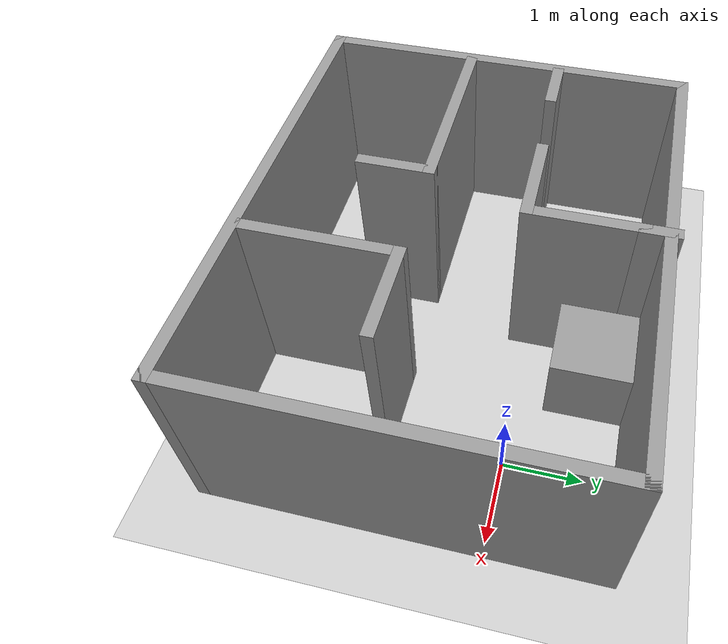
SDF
<sdf version="1.7">
 <world name="default">
  <light name="sun" type="directional">
   <pose>0 0 10 0 -0 0</pose>
   <diffuse>0.8 0.8 0.8 1</diffuse>
   <specular>0.2 0.2 0.2 1</specular>
   <attenuation>
    <range>1000</range>
    <constant>0.9</constant>
    <linear>0.01</linear>
    <quadratic>0.001</quadratic>
   </attenuation>
   <direction>-0.5 0.1 -0.9</direction>
   <spot><inner_angle>0</inner_angle><outer_angle>0</outer_angle><falloff>0</falloff></spot>
  </light>
  <model name="ground_plane">
   <static>1</static>
   <link name="link">
    <collision name="collision">
     <geometry><plane><normal>0 0 1</normal><size>100 100</size></plane></geometry>
     <surface>
      <contact><collide_bitmask>65535</collide_bitmask></contact>
      <friction><ode><mu>100</mu><mu2>50</mu2></ode></friction>
     </surface>
    </collision>
    <visual name="visual">
     <cast_shadows>0</cast_shadows>
     <geometry><plane><normal>0 0 1</normal><size>100 100</size></plane></geometry>
     <material>
      <script><uri>file://media/materials/scripts/gazebo.material</uri><name>Gazebo/Grey</name></script>
     </material>
    </visual>
   </link>
  </model>
  <gravity>0 0 -9.8</gravity>
  <magnetic_field>6e-06 2.3e-05 -4.2e-05</magnetic_field>
  <atmosphere type="adiabatic"/>
  <physics type="ode">
   <max_step_size>0.001</max_step_size>
   <real_time_factor>1</real_time_factor>
   <real_time_update_rate>1000</real_time_update_rate>
  </physics>
  <scene><ambient>0.4 0.4 0.4 1</ambient><background>0.7 0.7 0.7 1</background><shadows>1</shadows></scene>
  <audio><device>default</device></audio>
  <spherical_coordinates>
   <surface_model>EARTH_WGS84</surface_model>
   <latitude_deg>0</latitude_deg>
   <longitude_deg>0</longitude_deg>
   <elevation>0</elevation>
   <heading_deg>0</heading_deg>
  </spherical_coordinates>
  <model name="room1">
   <pose>-1.82646 -0.949359 0 0 -0 0</pose>
   <link name="Wall_0">
    <collision name="Wall_0_Collision">
     <geometry><box><size>5 0.15 2.5</size></box></geometry>
     <pose>0 0 1.25 0 -0 0</pose>
    </collision>
    <visual name="Wall_0_Visual">
     <pose>0 0 1.25 0 -0 0</pose>
     <geometry><box><size>5 0.15 2.5</size></box></geometry>
     <material>
      <script><uri>file://media/materials/scripts/gazebo.material</uri><name>Gazebo/Grey</name></script>
      <ambient>1 1 1 1</ambient>
     </material>
     <meta><layer>0</layer></meta>
    </visual>
    <pose>-2.925 -0.029951 0 0 -0 1.5708</pose>
   </link>
   <link name="Wall_1">
    <collision name="Wall_1_Collision">
     <geometry><box><size>6 0.15 2.5</size></box></geometry>
     <pose>0 0 1.25 0 -0 0</pose>
    </collision>
    <visual name="Wall_1_Visual">
     <pose>0 0 1.25 0 -0 0</pose>
     <geometry><box><size>6 0.15 2.5</size></box></geometry>
     <material>
      <script><uri>file://media/materials/scripts/gazebo.material</uri><name>Gazebo/Grey</name></script>
      <ambient>1 1 1 1</ambient>
     </material>
     <meta><layer>0</layer></meta>
    </visual>
    <pose>0 2.39505 0 0 -0 0</pose>
   </link>
   <link name="Wall_11">
    <collision name="Wall_11_Collision">
     <geometry><box><size>2.5 0.15 2.5</size></box></geometry>
     <pose>0 0 1.25 0 -0 0</pose>
    </collision>
    <visual name="Wall_11_Visual">
     <pose>0 0 1.25 0 -0 0</pose>
     <geometry><box><size>2.5 0.15 2.5</size></box></geometry>
     <material>
      <script><uri>file://media/materials/scripts/gazebo.material</uri><name>Gazebo/Grey</name></script>
      <ambient>1 1 1 1</ambient>
     </material>
     <meta><layer>0</layer></meta>
    </visual>
    <pose>-1.70608 -0.501423 0 0 -0 0</pose>
   </link>
   <link name="Wall_12">
    <collision name="Wall_12_Collision">
     <geometry><box><size>1 0.15 2.5</size></box></geometry>
     <pose>0 0 1.25 0 -0 0</pose>
    </collision>
    <visual name="Wall_12_Visual">
     <pose>0 0 1.25 0 -0 0</pose>
     <geometry><box><size>1 0.15 2.5</size></box></geometry>
     <material>
      <script><uri>file://media/materials/scripts/gazebo.material</uri><name>Gazebo/Grey</name></script>
      <ambient>1 1 1 1</ambient>
     </material>
     <meta><layer>0</layer></meta>
    </visual>
    <pose>-0.531077 -0.926423 0 0 -0 -1.5708</pose>
   </link>
   <link name="Wall_14">
    <collision name="Wall_14_Collision">
     <geometry><box><size>2 0.15 2.5</size></box></geometry>
     <pose>0 0 1.25 0 -0 0</pose>
    </collision>
    <visual name="Wall_14_Visual">
     <pose>0 0 1.25 0 -0 0</pose>
     <geometry><box><size>2 0.15 2.5</size></box></geometry>
     <material>
      <script><uri>file://media/materials/scripts/gazebo.material</uri><name>Gazebo/Grey</name></script>
      <ambient>1 1 1 1</ambient>
     </material>
     <meta><layer>0</layer></meta>
    </visual>
    <pose>0.834566 -1.42357 0 0 -0 1.5708</pose>
   </link>
   <link name="Wall_15">
    <collision name="Wall_15_Collision">
     <geometry><box><size>1.25 0.15 2.5</size></box></geometry>
     <pose>0 0 1.25 0 -0 0</pose>
    </collision>
    <visual name="Wall_15_Visual">
     <pose>0 0 1.25 0 -0 0</pose>
     <geometry><box><size>1.25 0.15 2.5</size></box></geometry>
     <material>
      <script><uri>file://media/materials/scripts/gazebo.material</uri><name>Gazebo/Grey</name></script>
      <ambient>1 1 1 1</ambient>
     </material>
     <meta><layer>0</layer></meta>
    </visual>
    <pose>1.38457 -0.498574 0 0 -0 0</pose>
   </link>
   <link name="Wall_2">
    <collision name="Wall_2_Collision">
     <geometry><box><size>5 0.15 2.5</size></box></geometry>
     <pose>0 0 1.25 0 -0 0</pose>
    </collision>
    <visual name="Wall_2_Visual">
     <pose>0 0 1.25 0 -0 0</pose>
     <geometry><box><size>5 0.15 2.5</size></box></geometry>
     <material>
      <script><uri>file://media/materials/scripts/gazebo.material</uri><name>Gazebo/Grey</name></script>
      <ambient>1 1 1 1</ambient>
     </material>
     <meta><layer>0</layer></meta>
    </visual>
    <pose>2.925 -0.029951 0 0 -0 -1.5708</pose>
   </link>
   <link name="Wall_3">
    <collision name="Wall_3_Collision">
     <geometry><box><size>6 0.15 2.5</size></box></geometry>
     <pose>0 0 1.25 0 -0 0</pose>
    </collision>
    <visual name="Wall_3_Visual">
     <pose>0 0 1.25 0 -0 0</pose>
     <geometry><box><size>6 0.15 2.5</size></box></geometry>
     <material>
      <script><uri>file://media/materials/scripts/gazebo.material</uri><name>Gazebo/Grey</name></script>
      <ambient>1 1 1 1</ambient>
     </material>
     <meta><layer>0</layer></meta>
    </visual>
    <pose>0 -2.45495 0 0 -0 3.14159</pose>
   </link>
   <link name="Wall_5">
    <collision name="Wall_5_Collision">
     <geometry><box><size>0.75 0.15 2.5</size></box></geometry>
     <pose>0 0 1.25 0 -0 0</pose>
    </collision>
    <visual name="Wall_5_Visual">
     <pose>0 0 1.25 0 -0 0</pose>
     <geometry><box><size>0.75 0.15 2.5</size></box></geometry>
     <material>
      <script><uri>file://media/materials/scripts/gazebo.material</uri><name>Gazebo/Grey</name></script>
      <ambient>1 1 1 1</ambient>
     </material>
     <meta><layer>0</layer></meta>
    </visual>
    <pose>-2.55463 0.715277 0 0 -0 0</pose>
   </link>
   <link name="Wall_7">
    <collision name="Wall_7_Collision">
     <geometry><box><size>1.25 0.15 2.5</size></box></geometry>
     <pose>0 0 1.25 0 -0 0</pose>
    </collision>
    <visual name="Wall_7_Visual">
     <pose>0 0 1.25 0 -0 0</pose>
     <geometry><box><size>1.25 0.15 2.5</size></box></geometry>
     <material>
      <script><uri>file://media/materials/scripts/gazebo.material</uri><name>Gazebo/Grey</name></script>
      <ambient>1 1 1 1</ambient>
     </material>
     <meta><layer>0</layer></meta>
    </visual>
    <pose>-0.677952 0.754952 0 0 -0 0</pose>
   </link>
   <link name="Wall_8">
    <collision name="Wall_8_Collision">
     <geometry><box><size>1.5 0.15 2.5</size></box></geometry>
     <pose>0 0 1.25 0 -0 0</pose>
    </collision>
    <visual name="Wall_8_Visual">
     <pose>0 0 1.25 0 -0 0</pose>
     <geometry><box><size>1.5 0.15 2.5</size></box></geometry>
     <material>
      <script><uri>file://media/materials/scripts/gazebo.material</uri><name>Gazebo/Grey</name></script>
      <ambient>1 1 1 1</ambient>
     </material>
     <meta><layer>0</layer></meta>
    </visual>
    <pose>-0.127952 1.42995 0 0 -0 1.5708</pose>
   </link>
   <link name="Wall_9">
    <collision name="Wall_9_Collision">
     <geometry><box><size>0.5 0.15 2.5</size></box></geometry>
     <pose>0 0 1.25 0 -0 0</pose>
    </collision>
    <visual name="Wall_9_Visual">
     <pose>0 0 1.25 0 -0 0</pose>
     <geometry><box><size>0.5 0.15 2.5</size></box></geometry>
     <material>
      <script><uri>file://media/materials/scripts/gazebo.material</uri><name>Gazebo/Grey</name></script>
      <ambient>1 1 1 1</ambient>
     </material>
     <meta><layer>0</layer></meta>
    </visual>
    <pose>-0.127952 2.27995 0 0 -0 1.5708</pose>
   </link>
   <static>1</static>
  </model>
  <model name="unit_box">
   <pose>-1.37784 0.870683 0.5 0 0 -1.6e-05</pose>
   <link name="link">
    <inertial>
     <mass>1</mass>
     <inertia>
      <ixx>0.166667</ixx>
      <ixy>0</ixy>
      <ixz>0</ixz>
      <iyy>0.166667</iyy>
      <iyz>0</iyz>
      <izz>0.166667</izz>
     </inertia>
    </inertial>
    <collision name="collision"><geometry><box><size>1 1 1</size></box></geometry></collision>
    <visual name="visual">
     <geometry><box><size>1 1 1</size></box></geometry>
     <material>
      <script><name>Gazebo/Grey</name><uri>file://media/materials/scripts/gazebo.material</uri></script>
     </material>
    </visual>
   </link>
  </model>
 </world>
</sdf>
